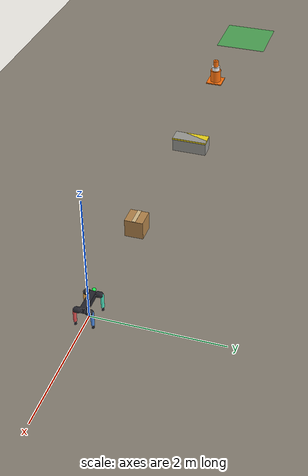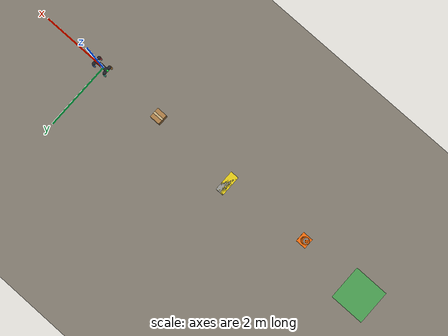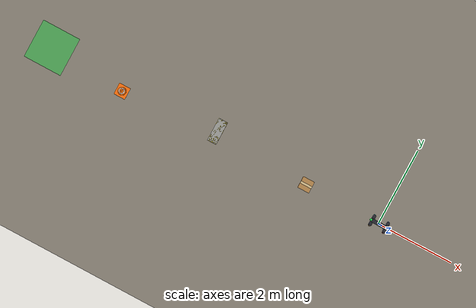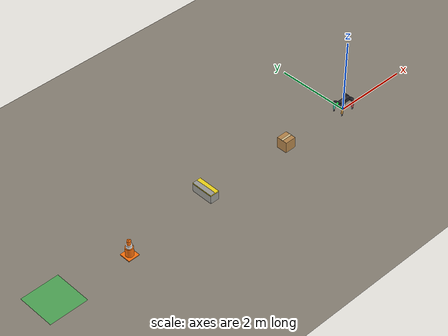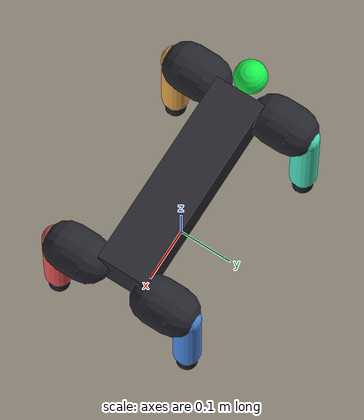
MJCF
<mujoco model="go1_obstacles">

  <compiler angle="radian" autolimits="true"/>
  <option gravity="0 0 -9.81" timestep="0.002" iterations="50" tolerance="1e-10"
          cone="elliptic" impratio="100"/>

  <default>
    <joint damping="2.0" frictionloss="0.2" armature="0.01"/>
    <geom contype="1" conaffinity="1" condim="3"
          friction="0.6 0.02 0.001" solref="0.005 1" solimp="0.98 0.99 0.001"/>
    <position kp="300" ctrlrange="-3.14 3.14" forcelimited="true" forcerange="-33.5 33.5"/>
    <default class="hip_joint">
      <joint damping="1.0" frictionloss="0.2" armature="0.01"/>
    </default>
    <default class="foot">
      <geom condim="6" friction="0.8 0.02 0.01"
            solimp="0.015 1 0.023" solref="0.005 1"/>
    </default>
  </default>

  <asset>
    <!-- Outdoor sky -->
    <texture name="sky" type="skybox" builtin="gradient"
             rgb1="0.45 0.60 0.85" rgb2="0.75 0.85 0.95"
             width="512" height="512" mark="random" markrgb="1 1 1"
             random="0.01"/>

    <!-- Concrete ground -->
    <texture name="ground_tex" type="2d" builtin="flat"
             rgb1="0.72 0.70 0.66" rgb2="0.68 0.66 0.62"
             width="512" height="512" mark="random" markrgb="0.65 0.63 0.60"
             random="0.05"/>
    <material name="ground_mat" texture="ground_tex" texrepeat="12 12"
              texuniform="true" reflectance="0.02" rgba="0.75 0.73 0.70 1"/>

    <!-- Cardboard box (brown, matte) -->
    <material name="cardboard" rgba="0.72 0.53 0.30 1" reflectance="0.02"/>

    <!-- Concrete barrier (gray) -->
    <material name="concrete" rgba="0.62 0.62 0.60 1" reflectance="0.03"/>

    <!-- Traffic cone (orange with white stripe) -->
    <material name="cone_orange" rgba="1.0 0.45 0.05 1" reflectance="0.1"/>
    <material name="cone_white" rgba="0.95 0.95 0.95 1" reflectance="0.15"/>

    <!-- Robot materials -->
    <material name="body_mat" rgba="0.15 0.15 0.18 1" reflectance="0.05"/>
    <material name="leg_mat" rgba="0.12 0.12 0.15 1" reflectance="0.03"/>
  </asset>

  <worldbody>
    <!-- Outdoor lighting — sun + ambient + fill -->
    <light name="sun" pos="5 3 12" dir="-0.3 -0.2 -1" diffuse="1.2 1.15 1.0"
           specular="0.5 0.5 0.4" castshadow="true"/>
    <light name="ambient" pos="0 0 10" dir="0 0 -1" diffuse="0.35 0.38 0.45"
           specular="0 0 0" castshadow="false"/>
    <light name="fill" pos="-5 -3 6" dir="0.3 0.2 -1" diffuse="0.25 0.25 0.30"
           castshadow="false"/>

    <!-- Ground — concrete slab -->
    <geom name="floor" type="plane" size="30 30 0.1" material="ground_mat"
          condim="6" friction="0.8 0.02 0.01"/>

    <!-- ══ Obstacle 1: Cardboard box (center, 2m ahead) ════════════════ -->
    <!-- 30cm cube sitting on the ground — robot must go around it -->
    <body name="box_1" pos="-2.0 0 0.15">
      <geom name="box_1_geom" type="box" size="0.15 0.15 0.15"
            material="cardboard" mass="5.0"
            friction="0.7 0.02 0.001"/>
      <!-- Tape stripe on top -->
      <geom name="box_1_tape" type="box" size="0.151 0.03 0.003" pos="0 0 0.153"
            rgba="0.85 0.75 0.55 1" contype="0" conaffinity="0"/>
    </body>

    <!-- ══ Obstacle 2: Concrete barrier (left of center, 4.5m ahead) ═══ -->
    <!-- Low wall 60cm wide, 25cm tall — blocks left path -->
    <body name="barrier_1" pos="-4.5 0.12 0.125">
      <geom name="barrier_geom" type="box" size="0.12 0.30 0.125"
            material="concrete" mass="80.0"
            friction="0.9 0.02 0.001"/>
      <!-- Yellow warning stripe -->
      <geom name="barrier_stripe" type="box" size="0.121 0.301 0.015" pos="0 0 0.11"
            rgba="0.95 0.85 0.10 1" contype="0" conaffinity="0"/>
    </body>

    <!-- ══ Obstacle 3: Traffic cone (right of center, 7m ahead) ════════ -->
    <!-- Standard traffic cone — tall, narrow, clearly visible -->
    <body name="cone_1" pos="-7.0 -0.12 0">
      <!-- Cone base -->
      <geom name="cone_base" type="box" size="0.15 0.15 0.01" pos="0 0 0.01"
            material="cone_orange" mass="3.0" friction="0.8 0.02 0.001"/>
      <!-- Cone body (tapered = stack of cylinders) -->
      <geom name="cone_lower" type="cylinder" size="0.10 0.12" pos="0 0 0.13"
            material="cone_orange" mass="1.0"/>
      <geom name="cone_stripe" type="cylinder" size="0.075 0.04" pos="0 0 0.29"
            material="cone_white" mass="0.2"
            contype="0" conaffinity="0"/>
      <geom name="cone_upper" type="cylinder" size="0.05 0.06" pos="0 0 0.39"
            material="cone_orange" mass="0.3"/>
      <geom name="cone_tip" type="sphere" size="0.02" pos="0 0 0.46"
            material="cone_orange" mass="0.05"
            contype="0" conaffinity="0"/>
    </body>

    <!-- ══ Goal marker (green pad on the ground at 9m) ═════════════════ -->
    <geom name="goal_pad" type="box" size="0.5 0.5 0.005" pos="-9.0 0 0.005"
          rgba="0.2 0.8 0.3 0.6" contype="0" conaffinity="0"/>

    <!-- ══ Robot ═══════════════════════════════════════════════════════ -->
    <body name="trunk" pos="0 0 0.27">
      <freejoint name="root"/>
      <geom name="trunk" type="box" size="0.1881 0.0475 0.048"
            mass="9.041" material="body_mat"/>
      <site name="imu" pos="0 0 0" size="0.005"/>
      <geom name="head_marker" type="sphere" size="0.03" pos="-0.22 0 0.04"
            rgba="0.1 0.95 0.3 1" contype="0" conaffinity="0" mass="0.001"/>

      <!-- FL leg -->
      <body name="FL_hip" pos="0.1881 0.0472 0">
        <joint name="FL_hip_joint" type="hinge" axis="1 0 0"
               range="-0.863 0.863" class="hip_joint"/>
        <geom type="capsule" size="0.044 0.020" pos="0 0.040 0"
              euler="1.5708 0 0" mass="0.591" material="body_mat"/>
        <body name="FL_thigh" pos="0 0.0838 0">
          <joint name="FL_thigh_joint" type="hinge" axis="0 -1 0"
                 range="-0.686 4.501"/>
          <geom type="capsule" size="0.025" fromto="0 0 0 0 0 -0.213"
                mass="0.921" material="leg_mat" rgba="0.30 0.55 0.90 1"/>
          <body name="FL_calf" pos="0 0 -0.213">
            <joint name="FL_calf_joint" type="hinge" axis="0 -1 0"
                   range="-2.818 -0.888"/>
            <geom type="capsule" size="0.019" fromto="0 0 0 0 0 -0.213"
                  mass="0.135" material="leg_mat"/>
            <body name="FL_foot" pos="0 0 -0.213">
              <geom name="FL_foot_geom" type="sphere" size="0.0165"
                    mass="0.06" rgba="0.30 0.55 0.90 1" class="foot"/>
            </body>
          </body>
        </body>
      </body>

      <!-- FR leg -->
      <body name="FR_hip" pos="0.1881 -0.0472 0">
        <joint name="FR_hip_joint" type="hinge" axis="-1 0 0"
               range="-0.863 0.863" class="hip_joint"/>
        <geom type="capsule" size="0.044 0.020" pos="0 -0.040 0"
              euler="1.5708 0 0" mass="0.591" material="body_mat"/>
        <body name="FR_thigh" pos="0 -0.0838 0">
          <joint name="FR_thigh_joint" type="hinge" axis="0 -1 0"
                 range="-0.686 4.501"/>
          <geom type="capsule" size="0.025" fromto="0 0 0 0 0 -0.213"
                mass="0.921" material="leg_mat" rgba="0.90 0.33 0.33 1"/>
          <body name="FR_calf" pos="0 0 -0.213">
            <joint name="FR_calf_joint" type="hinge" axis="0 -1 0"
                   range="-2.818 -0.888"/>
            <geom type="capsule" size="0.019" fromto="0 0 0 0 0 -0.213"
                  mass="0.135" material="leg_mat"/>
            <body name="FR_foot" pos="0 0 -0.213">
              <geom name="FR_foot_geom" type="sphere" size="0.0165"
                    mass="0.06" rgba="0.90 0.33 0.33 1" class="foot"/>
            </body>
          </body>
        </body>
      </body>

      <!-- RL leg -->
      <body name="RL_hip" pos="-0.1881 0.0472 0">
        <joint name="RL_hip_joint" type="hinge" axis="1 0 0"
               range="-0.863 0.863" class="hip_joint"/>
        <geom type="capsule" size="0.044 0.020" pos="0 0.040 0"
              euler="1.5708 0 0" mass="0.591" material="body_mat"/>
        <body name="RL_thigh" pos="0 0.0838 0">
          <joint name="RL_thigh_joint" type="hinge" axis="0 -1 0"
                 range="-0.686 4.501"/>
          <geom type="capsule" size="0.025" fromto="0 0 0 0 0 -0.213"
                mass="0.921" material="leg_mat" rgba="0.30 0.90 0.75 1"/>
          <body name="RL_calf" pos="0 0 -0.213">
            <joint name="RL_calf_joint" type="hinge" axis="0 -1 0"
                   range="-2.818 -0.888"/>
            <geom type="capsule" size="0.019" fromto="0 0 0 0 0 -0.213"
                  mass="0.135" material="leg_mat"/>
            <body name="RL_foot" pos="0 0 -0.213">
              <geom name="RL_foot_geom" type="sphere" size="0.0165"
                    mass="0.06" rgba="0.30 0.90 0.75 1" class="foot"/>
            </body>
          </body>
        </body>
      </body>

      <!-- RR leg -->
      <body name="RR_hip" pos="-0.1881 -0.0472 0">
        <joint name="RR_hip_joint" type="hinge" axis="-1 0 0"
               range="-0.863 0.863" class="hip_joint"/>
        <geom type="capsule" size="0.044 0.020" pos="0 -0.040 0"
              euler="1.5708 0 0" mass="0.591" material="body_mat"/>
        <body name="RR_thigh" pos="0 -0.0838 0">
          <joint name="RR_thigh_joint" type="hinge" axis="0 -1 0"
                 range="-0.686 4.501"/>
          <geom type="capsule" size="0.025" fromto="0 0 0 0 0 -0.213"
                mass="0.921" material="leg_mat" rgba="0.90 0.65 0.30 1"/>
          <body name="RR_calf" pos="0 0 -0.213">
            <joint name="RR_calf_joint" type="hinge" axis="0 -1 0"
                   range="-2.818 -0.888"/>
            <geom type="capsule" size="0.019" fromto="0 0 0 0 0 -0.213"
                  mass="0.135" material="leg_mat"/>
            <body name="RR_foot" pos="0 0 -0.213">
              <geom name="RR_foot_geom" type="sphere" size="0.0165"
                    mass="0.06" rgba="0.90 0.65 0.30 1" class="foot"/>
            </body>
          </body>
        </body>
      </body>

    </body>
  </worldbody>

  <actuator>
    <position name="FL_hip"   joint="FL_hip_joint"   ctrlrange="-0.80 0.80"   forcelimited="true" forcerange="-23.7 23.7"/>
    <position name="FL_thigh" joint="FL_thigh_joint" ctrlrange="-0.50 2.50"   forcelimited="true" forcerange="-23.7 23.7"/>
    <position name="FL_calf"  joint="FL_calf_joint"  ctrlrange="-2.75 -0.60"  forcelimited="true" forcerange="-35.55 35.55"/>
    <position name="FR_hip"   joint="FR_hip_joint"   ctrlrange="-0.80 0.80"   forcelimited="true" forcerange="-23.7 23.7"/>
    <position name="FR_thigh" joint="FR_thigh_joint" ctrlrange="-0.50 2.50"   forcelimited="true" forcerange="-23.7 23.7"/>
    <position name="FR_calf"  joint="FR_calf_joint"  ctrlrange="-2.75 -0.60"  forcelimited="true" forcerange="-35.55 35.55"/>
    <position name="RL_hip"   joint="RL_hip_joint"   ctrlrange="-0.80 0.80"   forcelimited="true" forcerange="-23.7 23.7"/>
    <position name="RL_thigh" joint="RL_thigh_joint" ctrlrange="-0.50 2.50"   forcelimited="true" forcerange="-23.7 23.7"/>
    <position name="RL_calf"  joint="RL_calf_joint"  ctrlrange="-2.75 -0.60"  forcelimited="true" forcerange="-35.55 35.55"/>
    <position name="RR_hip"   joint="RR_hip_joint"   ctrlrange="-0.80 0.80"   forcelimited="true" forcerange="-23.7 23.7"/>
    <position name="RR_thigh" joint="RR_thigh_joint" ctrlrange="-0.50 2.50"   forcelimited="true" forcerange="-23.7 23.7"/>
    <position name="RR_calf"  joint="RR_calf_joint"  ctrlrange="-2.75 -0.60"  forcelimited="true" forcerange="-35.55 35.55"/>
  </actuator>

  <keyframe>
    <key name="home" qpos="0 0 0.27 1 0 0 0
                           0 0.9 -1.8  0 0.9 -1.8
                           0 0.9 -1.8  0 0.9 -1.8"/>
  </keyframe>

</mujoco>
